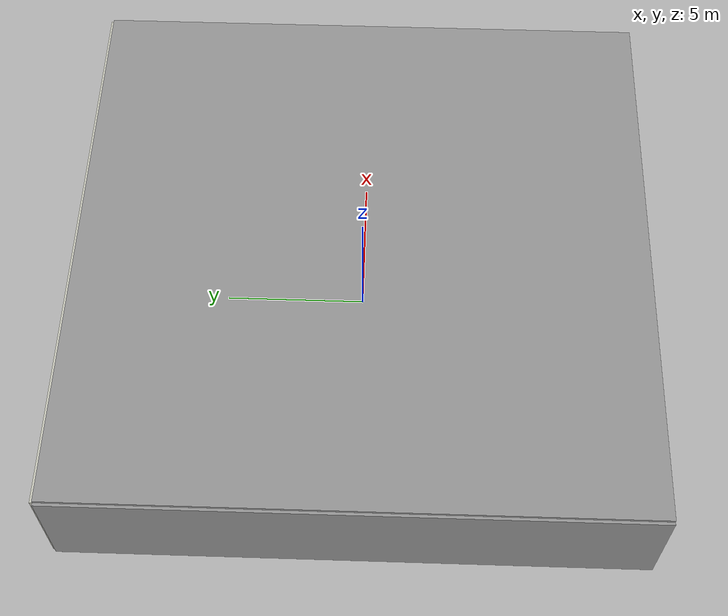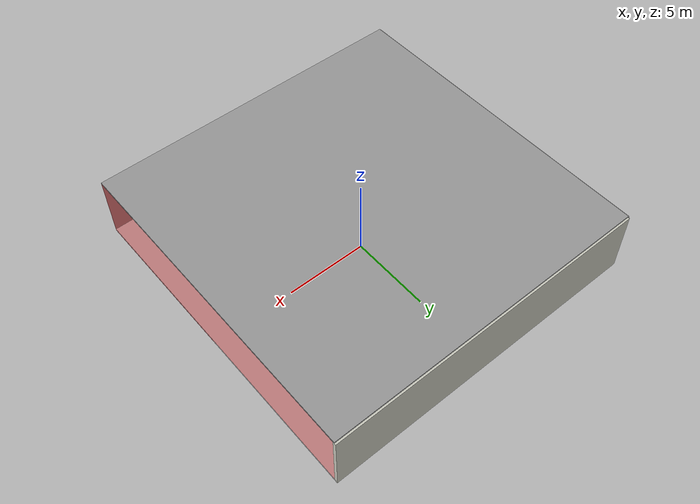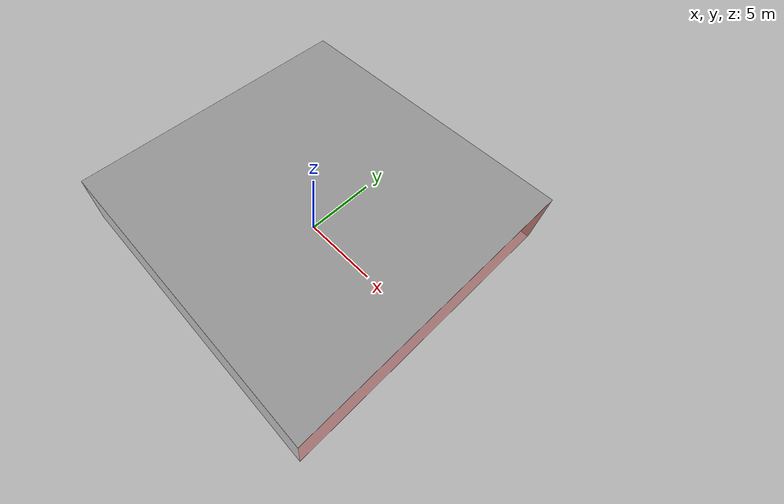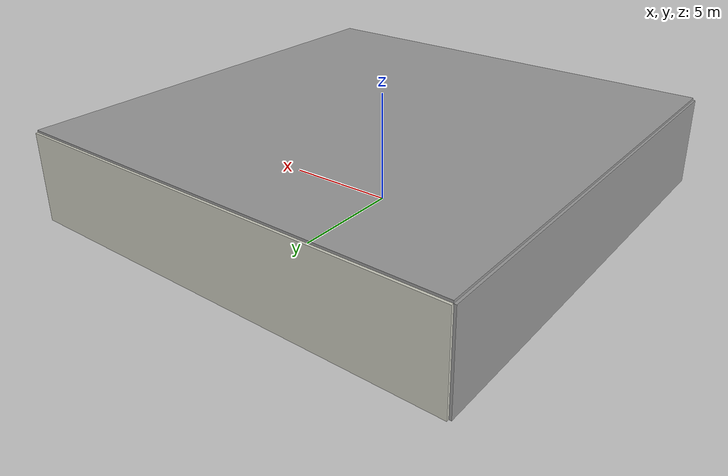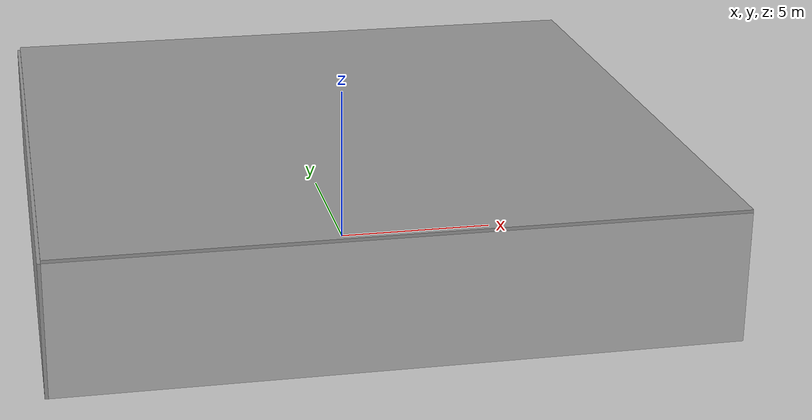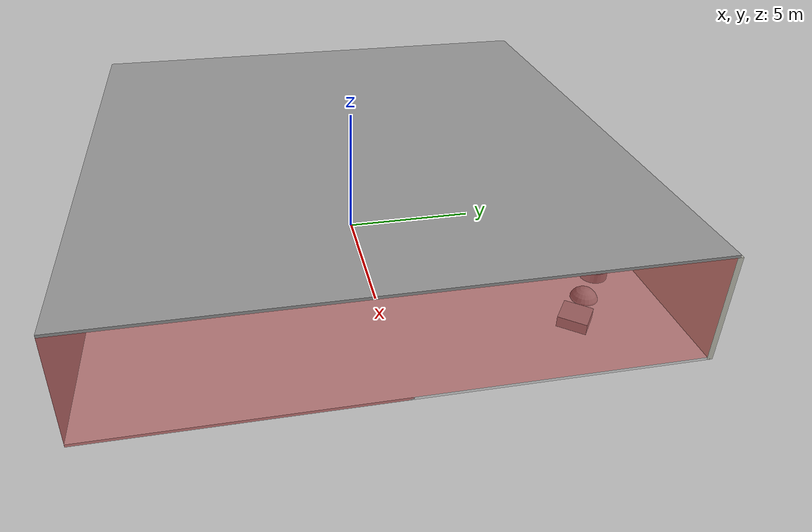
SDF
<sdf version="1.4">
 <world name="default">
  <physics type="ode">
   <max_step_size>0.001</max_step_size>
   <real_time_factor>1</real_time_factor>
   <real_time_update_rate>1000</real_time_update_rate>
   <gravity>0 0 -9.8</gravity>
  </physics>
  <scene><ambient>0.4 0.4 0.4 1</ambient><background>0.7 0.7 0.7 1</background><shadows>1</shadows></scene>
  <model name="Surrounding">
   <static>1</static>
   <link name="Ceiling">
    <collision name="Ceiling_Collision"><geometry><box><size>20 20 0.1</size></box></geometry></collision>
    <visual name="Ceiling_Visual">
     <geometry><box><size>20 20 0.1</size></box></geometry>
     <material>
      <script><uri>file://media/materials/scripts/gazebo.material</uri><name>Gazebo/Grey</name></script>
     </material>
    </visual>
    <pose>0 0 4.05 0 0 0</pose>
   </link>
   <link name="Wall_South">
    <collision name="Wall_South_Collision">
     <geometry><box><size>20 0 4</size></box></geometry>
     <pose>0 0 2 0 -0 0</pose>
    </collision>
    <visual name="Wall_South_Visual">
     <pose>0 0 2 0 -0 0</pose>
     <geometry><box><size>20 0 4</size></box></geometry>
     <material>
      <script><uri>file://media/materials/scripts/gazebo.material</uri><name>Gazebo/JointAnchor</name></script>
     </material>
    </visual>
    <velocity_decay><linear>0</linear><angular>0</angular></velocity_decay>
    <pose>0 -10 0 0 -0 0</pose>
   </link>
   <link name="Wall_East">
    <collision name="Wall_21_Collision">
     <geometry><box><size>20 0 4</size></box></geometry>
     <pose>0 0 2 0 -0 0</pose>
    </collision>
    <visual name="Wall_21_Visual">
     <pose>0 0 2 0 -0 0</pose>
     <geometry><box><size>20 0 4</size></box></geometry>
     <material>
      <script><uri>file://media/materials/scripts/gazebo.material</uri><name>Gazebo/RedTransparent</name></script>
     </material>
    </visual>
    <velocity_decay><linear>0</linear><angular>0</angular></velocity_decay>
    <pose>10 0 0 0 -0 1.5708</pose>
   </link>
   <link name="Wall_North">
    <collision name="Wall_22_Collision">
     <geometry><box><size>20 0.2 4</size></box></geometry>
     <pose>0 0 2 0 -0 0</pose>
    </collision>
    <visual name="Wall_22_Visual">
     <pose>0 0 2 0 -0 0</pose>
     <geometry><box><size>20 0.2 4</size></box></geometry>
     <material>
      <script><uri>file://media/materials/scripts/gazebo.material</uri><name>Gazebo/PaintedWall</name></script>
     </material>
    </visual>
    <velocity_decay><linear>0</linear><angular>0</angular></velocity_decay>
    <pose>0 10 0 0 -0 0</pose>
   </link>
   <link name="Wall_West">
    <collision name="Wall_23_Collision">
     <geometry><box><size>20 0.2 4</size></box></geometry>
     <pose>0 0 2 0 -0 0</pose>
    </collision>
    <visual name="Wall_23_Visual">
     <pose>0 0 2 0 -0 0</pose>
     <geometry><box><size>20 0.2 4</size></box></geometry>
     <material>
      <script><uri>file://media/materials/scripts/gazebo.material</uri><name>Gazebo/GreyGradientSky</name></script>
     </material>
    </visual>
    <velocity_decay><linear>0</linear><angular>0</angular></velocity_decay>
    <pose>-10 0 0 0 0 -1.5708</pose>
   </link>
   <link name="Ground_link">
    <collision name="collision">
     <pose>0 0 .05 0 -0 0</pose>
     <geometry><box><size>20 20 0.1</size></box></geometry>
    </collision>
    <visual name="visual">
     <pose>0 0 .05 0 -0 0</pose>
     <geometry><box><size>20 20 0.1</size></box></geometry>
     <material>
      <script><uri>file://media/materials/scripts/gazebo.material</uri><name>Gazebo/WhiteGlow</name></script>
     </material>
    </visual>
   </link>
   <static>1</static>
  </model>
  <spherical_coordinates>
   <surface_model>EARTH_WGS84</surface_model>
   <latitude_deg>0</latitude_deg>
   <longitude_deg>0</longitude_deg>
   <elevation>0</elevation>
   <heading_deg>0</heading_deg>
  </spherical_coordinates>
  <light name="lightball_0" type="diffuse">
   <diffuse>0.8 0.8 0.8 1</diffuse>
   <specular>0.2 0.2 0.2 1</specular>
   <attenuation>
    <range>100</range>
    <constant>0.7</constant>
    <linear>0.01</linear>
    <quadratic>0.001</quadratic>
   </attenuation>
   <direction>-0.5 0.1 -0.9</direction>
   <pose>-1.17850088966 -3.80843064416 0.829296367265 0 0 0</pose>
  </light>
  <light name="lightball_1" type="diffuse">
   <diffuse>0.8 0.8 0.8 1</diffuse>
   <specular>0.2 0.2 0.2 1</specular>
   <attenuation>
    <range>100</range>
    <constant>0.7</constant>
    <linear>0.01</linear>
    <quadratic>0.001</quadratic>
   </attenuation>
   <direction>-0.5 0.1 -0.9</direction>
   <pose>0.864261006407 -1.21781200061 0.846750235091 0 0 0</pose>
  </light>
  <light name="lightball_2" type="diffuse">
   <diffuse>0.8 0.8 0.8 1</diffuse>
   <specular>0.2 0.2 0.2 1</specular>
   <attenuation>
    <range>100</range>
    <constant>0.7</constant>
    <linear>0.01</linear>
    <quadratic>0.001</quadratic>
   </attenuation>
   <direction>-0.5 0.1 -0.9</direction>
   <pose>0.107506365573 -7.15563599269 2.65961924047 0 0 0</pose>
  </light>
  <light name="lightball_3" type="diffuse">
   <diffuse>0.8 0.8 0.8 1</diffuse>
   <specular>0.2 0.2 0.2 1</specular>
   <attenuation>
    <range>100</range>
    <constant>0.7</constant>
    <linear>0.01</linear>
    <quadratic>0.001</quadratic>
   </attenuation>
   <direction>-0.5 0.1 -0.9</direction>
   <pose>-5.64125955704 7.00113073615 2.54656542096 0 0 0</pose>
  </light>
  <light name="lightball_4" type="diffuse">
   <diffuse>0.8 0.8 0.8 1</diffuse>
   <specular>0.2 0.2 0.2 1</specular>
   <attenuation>
    <range>100</range>
    <constant>0.7</constant>
    <linear>0.01</linear>
    <quadratic>0.001</quadratic>
   </attenuation>
   <direction>-0.5 0.1 -0.9</direction>
   <pose>7.38538516683 -2.3693462804 1.6669298729 0 0 0</pose>
  </light>
  <light name="lightball_5" type="diffuse">
   <diffuse>0.8 0.8 0.8 1</diffuse>
   <specular>0.2 0.2 0.2 1</specular>
   <attenuation>
    <range>100</range>
    <constant>0.7</constant>
    <linear>0.01</linear>
    <quadratic>0.001</quadratic>
   </attenuation>
   <direction>-0.5 0.1 -0.9</direction>
   <pose>9.4312447487 0.864571045113 1.2621410671 0 0 0</pose>
  </light>
  <light name="lightball_6" type="diffuse">
   <diffuse>0.8 0.8 0.8 1</diffuse>
   <specular>0.2 0.2 0.2 1</specular>
   <attenuation>
    <range>100</range>
    <constant>0.7</constant>
    <linear>0.01</linear>
    <quadratic>0.001</quadratic>
   </attenuation>
   <direction>-0.5 0.1 -0.9</direction>
   <pose>-1.520597206 7.00175929179 1.22310030251 0 0 0</pose>
  </light>
  <light name="lightball_7" type="diffuse">
   <diffuse>0.8 0.8 0.8 1</diffuse>
   <specular>0.2 0.2 0.2 1</specular>
   <attenuation>
    <range>100</range>
    <constant>0.7</constant>
    <linear>0.01</linear>
    <quadratic>0.001</quadratic>
   </attenuation>
   <direction>-0.5 0.1 -0.9</direction>
   <pose>6.7400851261 8.94158888868 1.58028202993 0 0 0</pose>
  </light>
  <include><uri>model://cabinet</uri><pose>-8.53775108822 8.17566617419 0 0 0 1.34106169944</pose></include>
  <include><uri>model://cabinet</uri><pose>-1.81779123036 -4.42516343449 0 0 0 2.91233655661</pose></include>
  <include>
   <uri>model://textured_shapes</uri>
   <pose>-2.6064560976 1.91240786282 0 0 0 2.18210952264</pose>
  </include>
  <include>
   <uri>model://construction_cone</uri>
   <pose>3.74606165818 0.43441781323 0 0 0 1.25326066569</pose>
  </include>
  <include>
   <uri>model://textured_shapes</uri>
   <pose>6.39646138399 7.33966771564 0 0 0 0.913276540255</pose>
  </include>
 </world>
</sdf>

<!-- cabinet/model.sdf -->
<sdf version="1.5">
  <model name="cabinet">
    <static>true</static>
    <link name="cabinet_bottom_plate">
      <inertial>
        <pose>0 0 -1 0 0 0</pose>
        <inertia>
          <ixx>2.050000</ixx>
          <ixy>0</ixy>
          <ixz>0</ixz>
          <iyy>2.050000</iyy>
          <iyz>0</iyz>
          <izz>2.050000</izz>
        </inertia>
        <mass>25.000000</mass>
      </inertial>
      <collision name="cabinet_bottom_plate_geom">
        <pose>0 0 0.010000 0 0 0</pose>
        <geometry>
          <box>
            <size>0.450000 0.450000 0.020000</size>
          </box>
        </geometry>
      </collision>
      <visual name="cabinet_bottom_plate_geom_visual">
        <pose>0 0 0.010000 0 0 0</pose>
        <geometry>
          <box>
            <size>0.450000 0.450000 0.020000</size>
          </box>
        </geometry>
        <material>
          <script>
            <uri>model://media/materials/scripts/gazebo.material</uri>
            <name>Gazebo/Wood</name>
          </script>
        </material>
      </visual>
      <collision name="cabinet_bottom_plate_geom_cabinet_back_plate">
        <pose>0.235000 0 0.510000 0 0 0</pose>
        <geometry>
          <box>
            <size>0.020000 0.450000 1.020000</size>
          </box>
        </geometry>
      </collision>
      <visual name="cabinet_bottom_plate_geom_cabinet_back_plate_visual">
        <pose>0.235000 0 0.510000 0 0 0</pose>
        <geometry>
          <box>
            <size>0.020000 0.450000 1.020000</size>
          </box>
        </geometry>
        <material>
          <script>
            <uri>model://media/materials/scripts/gazebo.material</uri>
            <name>Gazebo/Wood</name>
          </script>
        </material>
      </visual>
      <collision name="cabinet_bottom_plate_geom_cabinet_left_plate">
        <pose>0 0.235000 0.510000 0 0 0</pose>
        <geometry>
          <box>
            <size>0.450000 0.020000 1.020000</size>
          </box>
        </geometry>
      </collision>
      <visual name="cabinet_bottom_plate_geom_cabinet_left_plate_visual">
        <pose>0 0.235000 0.510000 0 0 0</pose>
        <geometry>
          <box>
            <size>0.450000 0.020000 1.020000</size>
          </box>
        </geometry>
        <material>
          <script>
            <uri>model://media/materials/scripts/gazebo.material</uri>
            <name>Gazebo/Wood</name>
          </script>
        </material>
      </visual>
      <collision name="cabinet_bottom_plate_geom_cabinet_middle_plate">
        <pose>0 0 0.510000 0 0 0</pose>
        <geometry>
          <box>
            <size>0.450000 0.450000 0.020000</size>
          </box>
        </geometry>
      </collision>
      <visual name="cabinet_bottom_plate_geom_cabinet_middle_plate_visual">
        <pose>0 0 0.510000 0 0 0</pose>
        <geometry>
          <box>
            <size>0.450000 0.450000 0.020000</size>
          </box>
        </geometry>
        <material>
          <script>
            <uri>model://media/materials/scripts/gazebo.material</uri>
            <name>Gazebo/Wood</name>
          </script>
        </material>
      </visual>
      <collision name="cabinet_bottom_plate_geom_cabinet_right_plate">
        <pose>0 -0.235000 0.510000 0 0 0</pose>
        <geometry>
          <box>
            <size>0.450000 0.020000 1.020000</size>
          </box>
        </geometry>
      </collision>
      <visual name="cabinet_bottom_plate_geom_cabinet_right_plate_visual">
        <pose>0 -0.235000 0.510000 0 0 0</pose>
        <geometry>
          <box>
            <size>0.450000 0.020000 1.020000</size>
          </box>
        </geometry>
        <material>
          <script>
            <uri>model://media/materials/scripts/gazebo.material</uri>
            <name>Gazebo/Wood</name>
          </script>
        </material>
      </visual>
      <collision name="cabinet_bottom_plate_geom_cabinet_top_plate">
        <pose>0 0 1.010000 0 0 0</pose>
        <geometry>
          <box>
            <size>0.450000 0.450000 0.020000</size>
          </box>
        </geometry>
      </collision>
      <visual name="cabinet_bottom_plate_geom_cabinet_top_plate_visual">
        <pose>0 0 1.010000 0 0 0</pose>
        <geometry>
          <box>
            <size>0.450000 0.450000 0.020000</size>
          </box>
        </geometry>
        <material>
          <script>
            <uri>model://media/materials/scripts/gazebo.material</uri>
            <name>Gazebo/Wood</name>
          </script>
        </material>
      </visual>
    </link>
  </model>
</sdf>

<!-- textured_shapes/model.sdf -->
<sdf version="1.6">
  <model name="textured_shapes">
    <pose>0 0 0.5 0 0 0</pose>
    <link name="box">
      <pose>0 -1.5 0 0 0 0</pose>
      <collision name="collision">
        <geometry>
          <box>
            <size>1 1 1</size>
          </box>
        </geometry>
      </collision>
      <visual name="visual">
        <geometry>
          <box>
            <size>1 1 1</size>
          </box>
        </geometry>
        <material>
          <script>
            <uri>model://../model_source/models/textured_shapes/materials/scripts</uri>
            <uri>model://../model_source/models/textured_shapes/materials/textures</uri>
            <name>TexturedShape/Squares</name>
          </script>
        </material>
      </visual>
    </link>
    <link name="sphere">
      <collision name="collision">
        <geometry>
          <sphere>
            <radius>0.5</radius>
          </sphere>
        </geometry>
      </collision>
      <visual name="visual">
        <geometry>
          <sphere>
            <radius>0.5</radius>
          </sphere>
        </geometry>
        <material>
          <script>
            <uri>model://../model_source/models/textured_shapes/materials/scripts</uri>
            <uri>model://../model_source/models/textured_shapes/materials/textures</uri>
            <name>TexturedShape/Squares</name>
          </script>
        </material>
      </visual>
    </link>
    <link name="cylinder">
      <pose>0 1.5 0 0 0 0</pose>
      <collision name="collision">
        <geometry>
          <cylinder>
            <radius>0.5</radius>
            <length>1</length>
          </cylinder>
        </geometry>
      </collision>
      <visual name="visual">
        <geometry>
          <cylinder>
            <radius>0.5</radius>
            <length>1</length>
          </cylinder>
        </geometry>
        <material>
          <script>
            <uri>model://../model_source/models/textured_shapes/materials/scripts</uri>
            <uri>model://../model_source/models/textured_shapes/materials/textures</uri>
            <name>TexturedShape/Squares</name>
          </script>
        </material>
      </visual>
    </link>
  </model>
</sdf>

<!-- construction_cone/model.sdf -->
<sdf version="1.5">
  <model name="Construction Cone">
    <link name="link">
      <collision name="collision">
        <geometry>
          <mesh>
            <scale>10 10 10</scale>
            <uri>file://isr-testbed/construction_cone/meshes/construction_cone.dae</uri>
          </mesh>
        </geometry>
      </collision>
      <visual name="visual">
        <geometry>
          <mesh>
            <scale>10 10 10</scale>
            <uri>file://isr-testbed/construction_cone/meshes/construction_cone.dae</uri>
          </mesh>
        </geometry>
      </visual>
    </link>
  </model>
</sdf>
